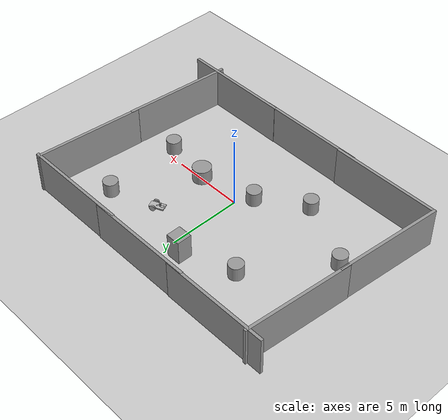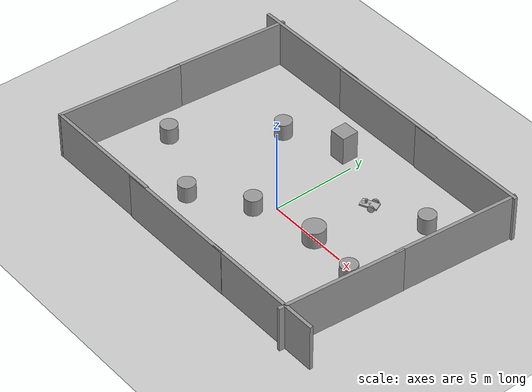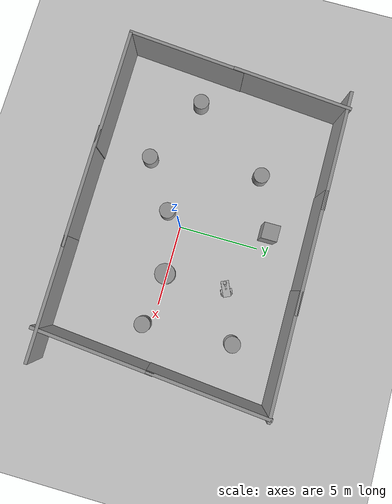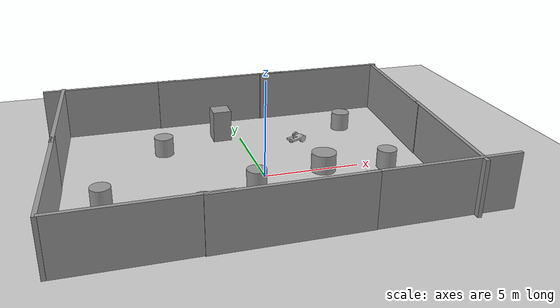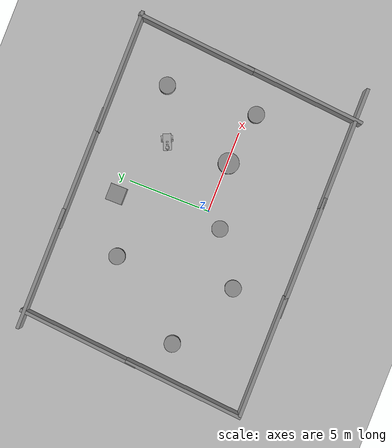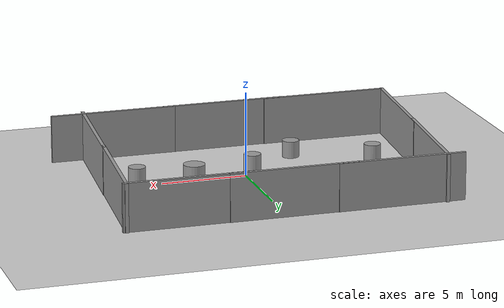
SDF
<sdf version="1.7">
 <world name="default">
  <light name="sun" type="directional">
   <pose>0 0 10 0 -0 0</pose>
   <diffuse>0.8 0.8 0.8 1</diffuse>
   <specular>0.2 0.2 0.2 1</specular>
   <attenuation>
    <range>1000</range>
    <constant>0.9</constant>
    <linear>0.01</linear>
    <quadratic>0.001</quadratic>
   </attenuation>
   <direction>-0.5 0.1 -0.9</direction>
   <spot><inner_angle>0</inner_angle><outer_angle>0</outer_angle><falloff>0</falloff></spot>
  </light>
  <model name="ground_plane">
   <static>1</static>
   <link name="link">
    <collision name="collision">
     <geometry><plane><normal>0 0 1</normal><size>100 100</size></plane></geometry>
     <surface><friction><ode><mu>100</mu><mu2>50</mu2></ode></friction></surface>
    </collision>
    <visual name="visual">
     <cast_shadows>0</cast_shadows>
     <geometry><plane><normal>0 0 1</normal><size>100 100</size></plane></geometry>
     <material>
      <script><uri>file://media/materials/scripts/gazebo.material</uri><name>Gazebo/Grey</name></script>
     </material>
    </visual>
   </link>
  </model>
  <gravity>0 0 -9.8</gravity>
  <magnetic_field>6e-06 2.3e-05 -4.2e-05</magnetic_field>
  <atmosphere type="adiabatic"/>
  <physics type="ode">
   <max_step_size>0.001</max_step_size>
   <real_time_factor>1</real_time_factor>
   <real_time_update_rate>1000</real_time_update_rate>
  </physics>
  <scene><ambient>0.4 0.4 0.4 1</ambient><background>0.7 0.7 0.7 1</background><shadows>1</shadows></scene>
  <audio><device>default</device></audio>
  <spherical_coordinates>
   <surface_model>EARTH_WGS84</surface_model>
   <latitude_deg>0</latitude_deg>
   <longitude_deg>0</longitude_deg>
   <elevation>0</elevation>
   <heading_deg>0</heading_deg>
  </spherical_coordinates>
  <model name="grey_wall">
   <static>1</static>
   <link name="link">
    <pose>0 0 1.4 0 -0 0</pose>
    <collision name="collision"><geometry><box><size>7.5 0.2 2.8</size></box></geometry></collision>
    <visual name="visual">
     <cast_shadows>0</cast_shadows>
     <geometry><box><size>7.5 0.2 2.8</size></box></geometry>
     <material>
      <script>
       <uri>model://grey_wall/materials/scripts</uri>
       <uri>model://grey_wall/materials/textures</uri>
       <name>vrc/grey_wall</name>
      </script>
     </material>
    </visual>
   </link>
   <pose>-0.36419 7.86025 0 0 -0 0</pose>
  </model>
  <model name="grey_wall_clone">
   <static>1</static>
   <link name="link">
    <pose>0 0 1.4 0 -0 0</pose>
    <collision name="collision"><geometry><box><size>7.5 0.2 2.8</size></box></geometry></collision>
    <visual name="visual">
     <cast_shadows>0</cast_shadows>
     <geometry><box><size>7.5 0.2 2.8</size></box></geometry>
     <material>
      <script>
       <uri>model://grey_wall/materials/scripts</uri>
       <uri>model://grey_wall/materials/textures</uri>
       <name>vrc/grey_wall</name>
      </script>
     </material>
    </visual>
   </link>
   <pose>5.71215 7.82181 0 0 -0 0</pose>
  </model>
  <model name="grey_wall_clone_0">
   <static>1</static>
   <link name="link">
    <pose>0 0 1.4 0 -0 0</pose>
    <collision name="collision"><geometry><box><size>7.5 0.2 2.8</size></box></geometry></collision>
    <visual name="visual">
     <cast_shadows>0</cast_shadows>
     <geometry><box><size>7.5 0.2 2.8</size></box></geometry>
     <material>
      <script>
       <uri>model://grey_wall/materials/scripts</uri>
       <uri>model://grey_wall/materials/textures</uri>
       <name>vrc/grey_wall</name>
      </script>
     </material>
    </visual>
   </link>
   <pose>-6.67696 7.89516 0 0 -0 0</pose>
  </model>
  <model name="grey_wall_clone_2">
   <static>1</static>
   <link name="link">
    <pose>0 0 1.4 0 -0 0</pose>
    <collision name="collision"><geometry><box><size>7.5 0.2 2.8</size></box></geometry></collision>
    <visual name="visual">
     <cast_shadows>0</cast_shadows>
     <geometry><box><size>7.5 0.2 2.8</size></box></geometry>
     <material>
      <script>
       <uri>model://grey_wall/materials/scripts</uri>
       <uri>model://grey_wall/materials/textures</uri>
       <name>vrc/grey_wall</name>
      </script>
     </material>
    </visual>
   </link>
   <pose>6.26994 -6.06398 0 0 -0 0</pose>
  </model>
  <model name="grey_wall_clone_3">
   <static>1</static>
   <link name="link">
    <pose>0 0 1.4 0 -0 0</pose>
    <collision name="collision"><geometry><box><size>7.5 0.2 2.8</size></box></geometry></collision>
    <visual name="visual">
     <cast_shadows>0</cast_shadows>
     <geometry><box><size>7.5 0.2 2.8</size></box></geometry>
     <material>
      <script>
       <uri>model://grey_wall/materials/scripts</uri>
       <uri>model://grey_wall/materials/textures</uri>
       <name>vrc/grey_wall</name>
      </script>
     </material>
    </visual>
   </link>
   <pose>-0.554521 -6.07986 0 0 -0 0</pose>
  </model>
  <model name="grey_wall_clone_4">
   <static>1</static>
   <link name="link">
    <pose>0 0 1.4 0 -0 0</pose>
    <collision name="collision"><geometry><box><size>7.5 0.2 2.8</size></box></geometry></collision>
    <visual name="visual">
     <cast_shadows>0</cast_shadows>
     <geometry><box><size>7.5 0.2 2.8</size></box></geometry>
     <material>
      <script>
       <uri>model://grey_wall/materials/scripts</uri>
       <uri>model://grey_wall/materials/textures</uri>
       <name>vrc/grey_wall</name>
      </script>
     </material>
    </visual>
   </link>
   <pose>-6.75728 -6.03482 0 0 -0 0</pose>
  </model>
  <model name="grey_wall_clone_5_clone">
   <static>1</static>
   <link name="link">
    <pose>0 0 1.4 0 -0 0</pose>
    <collision name="collision"><geometry><box><size>7.5 0.2 2.8</size></box></geometry></collision>
    <visual name="visual">
     <cast_shadows>0</cast_shadows>
     <geometry><box><size>7.5 0.2 2.8</size></box></geometry>
     <material>
      <script>
       <uri>model://grey_wall/materials/scripts</uri>
       <uri>model://grey_wall/materials/textures</uri>
       <name>vrc/grey_wall</name>
      </script>
     </material>
    </visual>
   </link>
   <pose>8.9223 4.25263 0 0 0 -1.65682</pose>
  </model>
  <model name="grey_wall_clone_5_clone_0">
   <static>1</static>
   <link name="link">
    <pose>0 0 1.4 0 -0 0</pose>
    <collision name="collision"><geometry><box><size>7.5 0.2 2.8</size></box></geometry></collision>
    <visual name="visual">
     <cast_shadows>0</cast_shadows>
     <geometry><box><size>7.5 0.2 2.8</size></box></geometry>
     <material>
      <script>
       <uri>model://grey_wall/materials/scripts</uri>
       <uri>model://grey_wall/materials/textures</uri>
       <name>vrc/grey_wall</name>
      </script>
     </material>
    </visual>
   </link>
   <pose>8.34306 -2.74052 0 0 0 -1.65682</pose>
  </model>
  <model name="grey_wall_clone_5_clone_1">
   <static>1</static>
   <link name="link">
    <pose>0 0 1.4 0 -0 0</pose>
    <collision name="collision"><geometry><box><size>7.5 0.2 2.8</size></box></geometry></collision>
    <visual name="visual">
     <cast_shadows>0</cast_shadows>
     <geometry><box><size>7.5 0.2 2.8</size></box></geometry>
     <material>
      <script>
       <uri>model://grey_wall/materials/scripts</uri>
       <uri>model://grey_wall/materials/textures</uri>
       <name>vrc/grey_wall</name>
      </script>
     </material>
    </visual>
   </link>
   <pose>-10.2203 -2.40037 0 0 0 -1.65682</pose>
  </model>
  <model name="grey_wall_clone_5_clone_2">
   <static>1</static>
   <link name="link">
    <pose>0 0 1.4 0 -0 0</pose>
    <collision name="collision"><geometry><box><size>7.5 0.2 2.8</size></box></geometry></collision>
    <visual name="visual">
     <cast_shadows>0</cast_shadows>
     <geometry><box><size>7.5 0.2 2.8</size></box></geometry>
     <material>
      <script>
       <uri>model://grey_wall/materials/scripts</uri>
       <uri>model://grey_wall/materials/textures</uri>
       <name>vrc/grey_wall</name>
      </script>
     </material>
    </visual>
   </link>
   <pose>-9.66167 4.39234 0 0 0 -1.65682</pose>
  </model>
  <model name="igvc_robot">
   <link name="base_link">
    <inertial>
     <pose>0.088652 0 0.001844 0 -0 0</pose>
     <mass>1.41</mass>
     <inertia>
      <ixx>0.0963712</ixx>
      <ixy>0</ixy>
      <ixz>0.0019805</ixz>
      <iyy>0.12604</iyy>
      <iyz>0</iyz>
      <izz>0.116668</izz>
     </inertia>
    </inertial>
    <collision name="base_link_fixed_joint_lump__castor_wheel_collision">
     <pose>0.35 0 -0.05 0 -0 0</pose>
     <geometry><sphere><radius>0.15</radius></sphere></geometry>
    </collision>
    <collision name="base_link2_collision_1"><geometry><box><size>1 0.5 0.1</size></box></geometry></collision>
    <collision name="base_link_fixed_joint_lump__imu_link_collision_2">
     <pose>0 0 0.01 0 -0 0</pose>
     <geometry><box><size>0.1 0.1 0.1</size></box></geometry>
    </collision>
    <collision name="base_link_fixed_joint_lump__lidar_link_collision_3">
     <pose>0.2 0 0.25 0 -0 0</pose>
     <geometry><box><size>0.1 0.1 0.1</size></box></geometry>
    </collision>
    <collision name="base_link_fixed_joint_lump__lidar_stand_collision_4">
     <pose>0.2 0 0.1 0 -0 0</pose>
     <geometry><box><size>0.1 0.1 0.2</size></box></geometry>
    </collision>
    <visual name="base_link_fixed_joint_lump__castor_wheel_visual">
     <pose>0.35 0 -0.05 0 -0 0</pose>
     <geometry><sphere><radius>0.15</radius></sphere></geometry>
    </visual>
    <visual name="base_link2_visual_1"><geometry><box><size>1 0.5 0.1</size></box></geometry></visual>
    <visual name="base_link_fixed_joint_lump__imu_link_visual_2">
     <pose>0 0 0.01 0 -0 0</pose>
     <geometry><box><size>0.1 0.1 0.1</size></box></geometry>
    </visual>
    <visual name="base_link_fixed_joint_lump__lidar_link_visual_3">
     <pose>0.2 0 0.25 0 -0 0</pose>
     <geometry><box><size>0.1 0.1 0.1</size></box></geometry>
    </visual>
    <visual name="base_link_fixed_joint_lump__lidar_stand_visual_4">
     <pose>0.2 0 0.1 0 -0 0</pose>
     <geometry><box><size>0.1 0.1 0.2</size></box></geometry>
    </visual>
    <sensor name="laser" type="ray">
     <visualize>1</visualize>
     <update_rate>100</update_rate>
     <ray>
      <scan>
       <horizontal>
        <samples>720</samples>
        <resolution>1</resolution>
        <min_angle>-3.14</min_angle>
        <max_angle>3.14</max_angle>
       </horizontal>
       <vertical><samples>1</samples><min_angle>0</min_angle><max_angle>0</max_angle></vertical>
      </scan>
      <range><min>0.1</min><max>30</max><resolution>0.01</resolution></range>
      <noise><type>gaussian</type><mean>0</mean><stddev>0.01</stddev></noise>
     </ray>
     <plugin name="laser" filename="libgazebo_ros_ray_sensor.so">
      <ros><remapping>~/out:=scan</remapping></ros>
      <output_type>sensor_msgs/LaserScan</output_type>
      <frameName>lidar_link</frameName>
     </plugin>
     <pose>0.2 0 0.25 0 -0 0</pose>
    </sensor>
   </link>
   <joint name="left_wheel_joint" type="revolute">
    <pose relative_to="base_link">-0.2 0 0 0 -0 0</pose>
    <parent>base_link</parent>
    <child>left_wheel</child>
    <axis>
     <xyz>0 1 0</xyz>
     <limit><lower>-1e+16</lower><upper>1e+16</upper></limit>
     <dynamics><spring_reference>0</spring_reference><spring_stiffness>0</spring_stiffness></dynamics>
    </axis>
   </joint>
   <link name="left_wheel">
    <pose relative_to="left_wheel_joint">0 0 0 0 -0 0</pose>
    <inertial>
     <pose>0 -0.3 0 -1.57079 1.57079 3.14159</pose>
     <mass>0.5</mass>
     <inertia><ixx>0.006</ixx><ixy>0</ixy><ixz>0</ixz><iyy>0.006</iyy><iyz>0</iyz><izz>0.001</izz></inertia>
    </inertial>
    <collision name="left_wheel_collision">
     <pose>0 -0.3 0 -1.57079 1.57079 3.14159</pose>
     <geometry><cylinder><length>0.1</length><radius>0.2</radius></cylinder></geometry>
    </collision>
    <visual name="left_wheel_visual">
     <pose>0 -0.3 0 -1.57079 1.57079 3.14159</pose>
     <geometry><cylinder><length>0.1</length><radius>0.2</radius></cylinder></geometry>
    </visual>
   </link>
   <joint name="right_wheel_joint" type="revolute">
    <pose relative_to="base_link">-0.2 0 0 0 -0 0</pose>
    <parent>base_link</parent>
    <child>right_wheel</child>
    <axis>
     <xyz>0 1 0</xyz>
     <limit><lower>-1e+16</lower><upper>1e+16</upper></limit>
     <dynamics><spring_reference>0</spring_reference><spring_stiffness>0</spring_stiffness></dynamics>
    </axis>
   </joint>
   <link name="right_wheel">
    <pose relative_to="right_wheel_joint">0 0 0 0 -0 0</pose>
    <inertial>
     <pose>0 0.3 0 -1.57079 1.57079 3.14159</pose>
     <mass>0.5</mass>
     <inertia><ixx>0.006</ixx><ixy>0</ixy><ixz>0</ixz><iyy>0.006</iyy><iyz>0</iyz><izz>0.001</izz></inertia>
    </inertial>
    <collision name="right_wheel_collision">
     <pose>0 0.3 0 -1.57079 1.57079 3.14159</pose>
     <geometry><cylinder><length>0.1</length><radius>0.2</radius></cylinder></geometry>
    </collision>
    <visual name="right_wheel_visual">
     <pose>0 0.3 0 -1.57079 1.57079 3.14159</pose>
     <geometry><cylinder><length>0.1</length><radius>0.2</radius></cylinder></geometry>
    </visual>
   </link>
   <static>0</static>
   <plugin name="diff_drive" filename="libgazebo_ros_diff_drive.so">
    <ros><namespace>/</namespace></ros>
    <left_joint>left_wheel_joint</left_joint>
    <right_joint>right_wheel_joint</right_joint>
    <wheel_separation>0.6</wheel_separation>
    <wheel_diameter>0.4</wheel_diameter>
    <max_wheel_torque>20</max_wheel_torque>
    <max_wheel_acceleration>1.0</max_wheel_acceleration>
    <publish_odom>1</publish_odom>
    <publish_odom_tf>1</publish_odom_tf>
    <publish_wheel_tf>1</publish_wheel_tf>
    <odometry_frame>odom</odometry_frame>
    <robot_base_frame>base_link</robot_base_frame>
   </plugin>
   <pose>2.95471 3.79 0.199998 0 1.6e-05 -2.71169</pose>
  </model>
  <model name="unit_cylinder">
   <pose>3.08471 -0.071664 0.499997 4e-06 3e-06 -0</pose>
   <link name="link">
    <inertial>
     <mass>1</mass>
     <inertia><ixx>0.145833</ixx><ixy>0</ixy><ixz>0</ixz><iyy>0.145833</iyy><iyz>0</iyz><izz>0.125</izz></inertia>
    </inertial>
    <collision name="collision">
     <geometry><cylinder><radius>0.63665</radius><length>1</length></cylinder></geometry>
    </collision>
    <visual name="visual">
     <geometry><cylinder><radius>0.63665</radius><length>1</length></cylinder></geometry>
     <material>
      <script><name>Gazebo/Grey</name><uri>file://media/materials/scripts/gazebo.material</uri></script>
     </material>
    </visual>
   </link>
  </model>
  <model name="unit_box">
   <pose>-1.02314 5.42689 0.863946 1e-06 0 0.000215</pose>
   <link name="link">
    <inertial>
     <mass>1</mass>
     <inertia>
      <ixx>0.166667</ixx>
      <ixy>0</ixy>
      <ixz>0</ixz>
      <iyy>0.166667</iyy>
      <iyz>0</iyz>
      <izz>0.166667</izz>
     </inertia>
    </inertial>
    <collision name="collision"><geometry><box><size>1 1 1.72789</size></box></geometry></collision>
    <visual name="visual">
     <geometry><box><size>1 1 1.72789</size></box></geometry>
     <material>
      <script><name>Gazebo/Grey</name><uri>file://media/materials/scripts/gazebo.material</uri></script>
     </material>
    </visual>
   </link>
  </model>
  <model name="unit_cylinder_0">
   <pose>-4.43909 4.07205 0.499992 -3e-06 3e-06 0</pose>
   <link name="link">
    <inertial>
     <mass>1</mass>
     <inertia><ixx>0.145833</ixx><ixy>0</ixy><ixz>0</ixz><iyy>0.145833</iyy><iyz>0</iyz><izz>0.125</izz></inertia>
    </inertial>
    <collision name="collision">
     <geometry><cylinder><radius>0.5</radius><length>1</length></cylinder></geometry>
    </collision>
    <visual name="visual">
     <geometry><cylinder><radius>0.5</radius><length>1</length></cylinder></geometry>
     <material>
      <script><name>Gazebo/Grey</name><uri>file://media/materials/scripts/gazebo.material</uri></script>
     </material>
    </visual>
   </link>
  </model>
  <model name="unit_cylinder_1">
   <pose>-3.71532 -3.00978 0.499998 3e-06 -4e-06 0</pose>
   <link name="link">
    <inertial>
     <mass>1</mass>
     <inertia><ixx>0.145833</ixx><ixy>0</ixy><ixz>0</ixz><iyy>0.145833</iyy><iyz>0</iyz><izz>0.125</izz></inertia>
    </inertial>
    <collision name="collision">
     <geometry><cylinder><radius>0.5</radius><length>1</length></cylinder></geometry>
    </collision>
    <visual name="visual">
     <geometry><cylinder><radius>0.5</radius><length>1</length></cylinder></geometry>
     <material>
      <script><name>Gazebo/Grey</name><uri>file://media/materials/scripts/gazebo.material</uri></script>
     </material>
    </visual>
   </link>
  </model>
  <model name="unit_cylinder_2">
   <pose>6.05337 4.98126 0.499992 -3e-06 4e-06 0</pose>
   <link name="link">
    <inertial>
     <mass>1</mass>
     <inertia><ixx>0.145833</ixx><ixy>0</ixy><ixz>0</ixz><iyy>0.145833</iyy><iyz>0</iyz><izz>0.125</izz></inertia>
    </inertial>
    <collision name="collision">
     <geometry><cylinder><radius>0.5</radius><length>1</length></cylinder></geometry>
    </collision>
    <visual name="visual">
     <geometry><cylinder><radius>0.5</radius><length>1</length></cylinder></geometry>
     <material>
      <script><name>Gazebo/Grey</name><uri>file://media/materials/scripts/gazebo.material</uri></script>
     </material>
    </visual>
   </link>
  </model>
  <model name="unit_cylinder_3">
   <pose>6.35447 -0.550013 0.499998 3e-06 -4e-06 0</pose>
   <link name="link">
    <inertial>
     <mass>1</mass>
     <inertia><ixx>0.145833</ixx><ixy>0</ixy><ixz>0</ixz><iyy>0.145833</iyy><iyz>0</iyz><izz>0.125</izz></inertia>
    </inertial>
    <collision name="collision">
     <geometry><cylinder><radius>0.5</radius><length>1</length></cylinder></geometry>
    </collision>
    <visual name="visual">
     <geometry><cylinder><radius>0.5</radius><length>1</length></cylinder></geometry>
     <material>
      <script><name>Gazebo/Grey</name><uri>file://media/materials/scripts/gazebo.material</uri></script>
     </material>
    </visual>
   </link>
  </model>
  <model name="unit_cylinder_4">
   <pose>-8.06451 -0.856231 0.499993 -3e-06 -4e-06 -0</pose>
   <link name="link">
    <inertial>
     <mass>1</mass>
     <inertia><ixx>0.145833</ixx><ixy>0</ixy><ixz>0</ixz><iyy>0.145833</iyy><iyz>0</iyz><izz>0.125</izz></inertia>
    </inertial>
    <collision name="collision">
     <geometry><cylinder><radius>0.5</radius><length>1</length></cylinder></geometry>
    </collision>
    <visual name="visual">
     <geometry><cylinder><radius>0.5</radius><length>1</length></cylinder></geometry>
     <material>
      <script><name>Gazebo/Grey</name><uri>file://media/materials/scripts/gazebo.material</uri></script>
     </material>
    </visual>
   </link>
  </model>
  <model name="unit_cylinder_5">
   <pose>-0.717118 -1.00591 0.499997 3e-06 4e-06 -0</pose>
   <link name="link">
    <inertial>
     <mass>1</mass>
     <inertia><ixx>0.145833</ixx><ixy>0</ixy><ixz>0</ixz><iyy>0.145833</iyy><iyz>0</iyz><izz>0.125</izz></inertia>
    </inertial>
    <collision name="collision">
     <geometry><cylinder><radius>0.5</radius><length>1</length></cylinder></geometry>
    </collision>
    <visual name="visual">
     <geometry><cylinder><radius>0.5</radius><length>1</length></cylinder></geometry>
     <material>
      <script><name>Gazebo/Grey</name><uri>file://media/materials/scripts/gazebo.material</uri></script>
     </material>
    </visual>
   </link>
  </model>
 </world>
</sdf>
